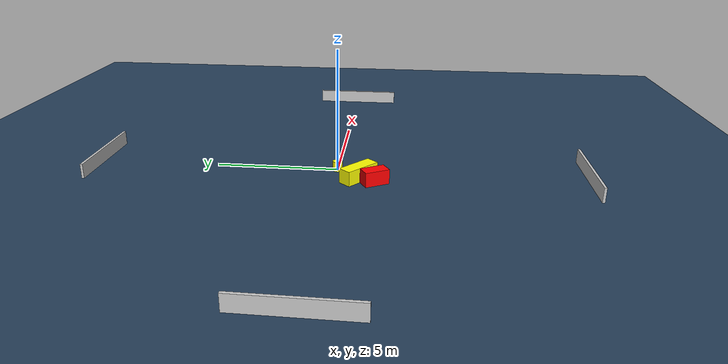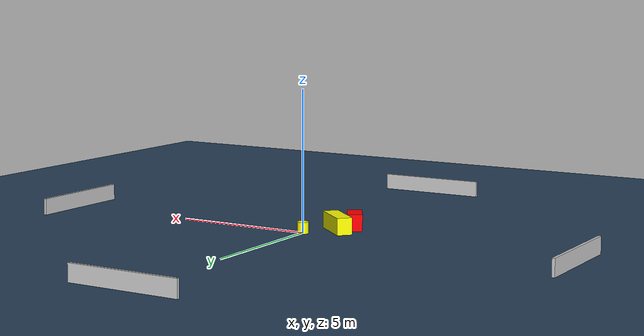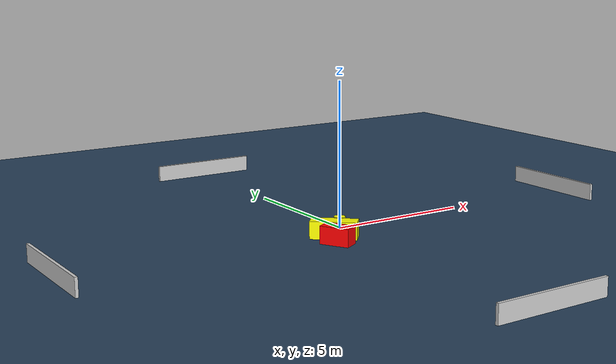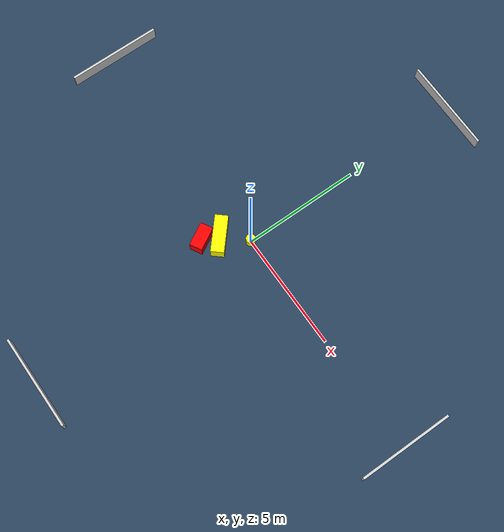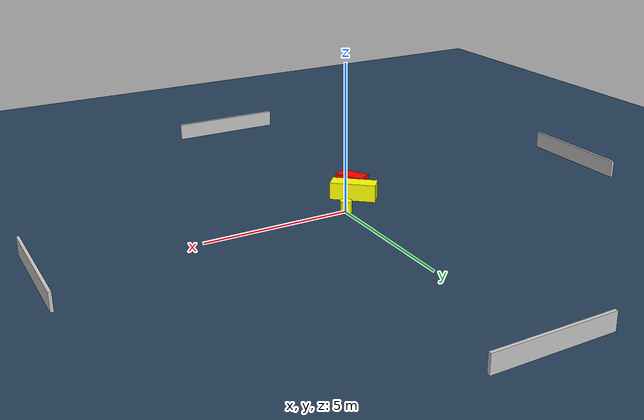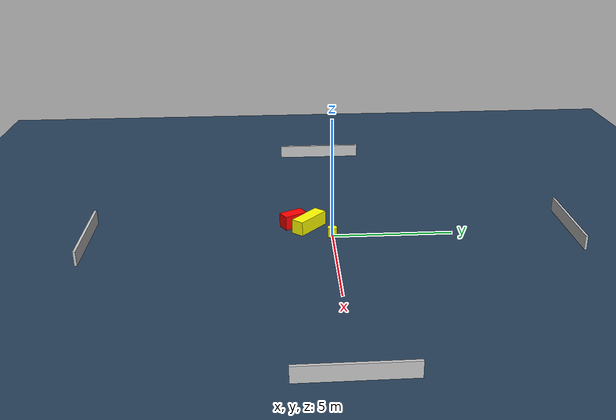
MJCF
<?xml version="1.0" ?>
<mujoco model="generated_environment">
  <option timestep="0.01" integrator="RK4" cone="elliptic"/>
  <default>
    <geom density="1"/>
  </default>
  <asset>
    <texture builtin="gradient" height="3072" name="skybox" rgb1="0.3 0.5 0.7" rgb2="0 0 0" type="skybox" width="512"/>
    <texture builtin="checker" height="300" name="groundplane" rgb1="0.2 0.3 0.4" rgb2="0.1 0.2 0.3" type="2d" width="300"/>
    <material name="groundplane" reflectance="0.2" texrepeat="5 5" texture="groundplane"/>
  </asset>
  <worldbody>
    <light dir="0 0 -1" directional="true" pos="0 0 1.5"/>
    <geom condim="3" friction="0.5 0.005 0.001" material="groundplane" name="floor" pos="0 0 0" size="0 0 0.05" type="plane"/>
    <body name="walls">
      <geom name="wall_1" condim="4" pos="-10.0 0.0 0.3" rgba="0.800000011920929 0.800000011920929 0.800000011920929 1.0" size="0.05 2.0 0.3" type="box"/>
      <geom name="wall_2" condim="4" pos="10.0 0.0 0.3" rgba="0.800000011920929 0.800000011920929 0.800000011920929 1.0" size="0.05 2.0 0.3" type="box"/>
      <geom name="wall_3" condim="4" pos="0.0 -10.0 0.3" rgba="0.800000011920929 0.800000011920929 0.800000011920929 1.0" size="2.0 0.05 0.3" type="box"/>
      <geom name="wall_4" condim="4" pos="0.0 10.0 0.3" rgba="0.800000011920929 0.800000011920929 0.800000011920929 1.0" size="2.0 0.05 0.3" type="box"/>
    </body>
    <body name="robot">
      <joint name="joint_x" type="slide" pos="0 0 0" axis="1 0 0"/>
      <joint name="joint_y" type="slide" pos="0 0 0" axis="0 1 0"/>
      <geom name="robot" type="cylinder" pos="0.0 0.0 0.2" size="0.2 0.2 0.0" mass="5.0" friction="1.0 0.005 0.0001" condim="4" rgba="1.0 1.0 0.0 1.0"/>
    </body>
    <body name="obstacle_1_movable">
      <geom name="obstacle_1_movable" condim="4" pos="-0.8464769209998602 -0.9284010441342071 0.3" euler="0 0 228.73320661602048" friction="0.0 0.005 0.001" rgba="1.0 1.0 0.0 1.0" size="0.27519174165969196 0.7808028209155808 0.3" type="box" mass="0.1"/>
      <joint type="free"/>
    </body>
    <body name="obstacle_2_static">
      <geom name="obstacle_2_static" condim="4" pos="-1.1631667547542364 -1.5830939346651356 0.3" euler="0 0 299.3824170644544" friction="0.0 0.005 0.001" rgba="1.0 0.0 0.0 1.0" size="0.5092973265630145 0.27045204164209946 0.3" type="box"/>
    </body>
  </worldbody>
  <actuator>
    <motor name="actuator_x" joint="joint_x" gear="1" ctrlrange="-1 1"/>
    <motor name="actuator_y" joint="joint_y" gear="1" ctrlrange="-1 1"/>
  </actuator>
</mujoco>
